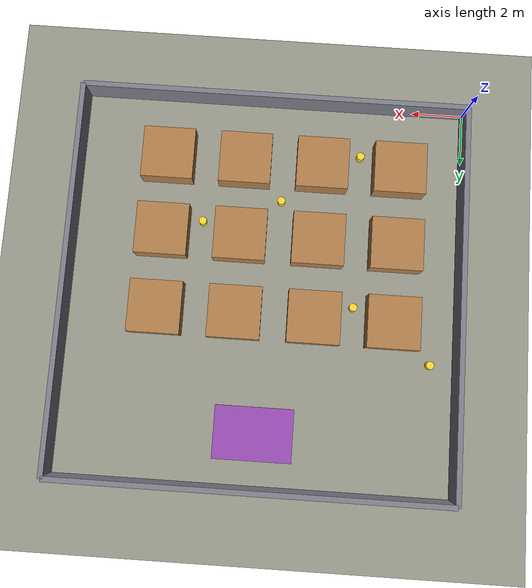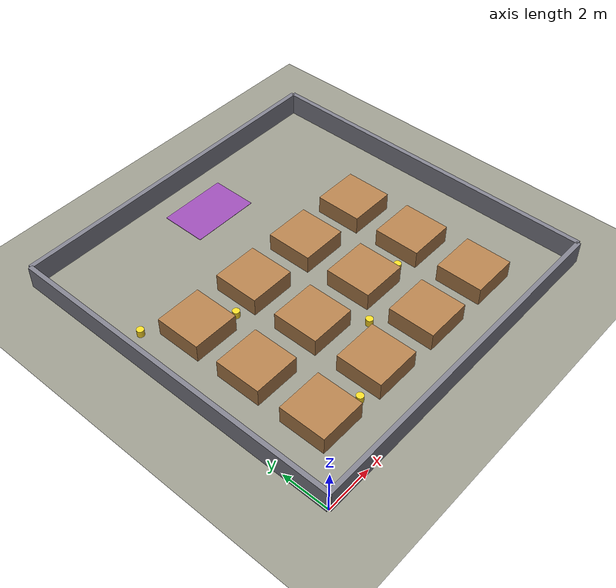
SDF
<?xml version="1.0" ?>
<sdf version="1.6">
  <world name="warehouse_world">

    <!-- Physics -->
    <physics type="ode">
      <max_step_size>0.001</max_step_size>
      <real_time_factor>1.0</real_time_factor>
      <real_time_update_rate>1000</real_time_update_rate>
    </physics>

    <!-- Lighting -->
    <light name="warehouse_light_1" type="directional">
      <pose>5 5 10 0 -0.5 0</pose>
      <diffuse>0.9 0.9 0.85 1</diffuse>
      <specular>0.2 0.2 0.2 1</specular>
      <direction>-0.3 0.3 -1.0</direction>
      <cast_shadows>true</cast_shadows>
    </light>

    <light name="warehouse_light_2" type="point">
      <pose>3 3 4 0 0 0</pose>
      <diffuse>0.6 0.6 0.55 1</diffuse>
      <attenuation>
        <range>20</range>
        <constant>0.3</constant>
        <linear>0.05</linear>
        <quadratic>0.01</quadratic>
      </attenuation>
    </light>

    <light name="warehouse_light_3" type="point">
      <pose>7 7 4 0 0 0</pose>
      <diffuse>0.6 0.6 0.55 1</diffuse>
      <attenuation>
        <range>20</range>
        <constant>0.3</constant>
        <linear>0.05</linear>
        <quadratic>0.01</quadratic>
      </attenuation>
    </light>

    <!-- Ground Plane (warehouse floor) -->
    <model name="ground_plane">
      <static>true</static>
      <link name="link">
        <collision name="collision">
          <geometry>
            <plane>
              <normal>0 0 1</normal>
              <size>15 15</size>
            </plane>
          </geometry>
          <surface>
            <friction>
              <ode>
                <mu>1.0</mu>
                <mu2>1.0</mu2>
              </ode>
            </friction>
          </surface>
        </collision>
        <visual name="visual">
          <geometry>
            <plane>
              <normal>0 0 1</normal>
              <size>15 15</size>
            </plane>
          </geometry>
          <material>
            <ambient>0.55 0.55 0.50 1</ambient>
            <diffuse>0.6 0.6 0.55 1</diffuse>
          </material>
        </visual>
      </link>
    </model>

    <!--  WAREHOUSE WALLS (outer boundary)                          -->

    <!-- Outer walls -->
    <model name="wall_north">
      <static>true</static>
      <pose>7.5 0 0.5 0 0 0</pose>
      <link name="link">
        <collision name="collision">
          <geometry><box><size>15 0.2 1.0</size></box></geometry>
        </collision>
        <visual name="visual">
          <geometry><box><size>15 0.2 1.0</size></box></geometry>
          <material>
            <ambient>0.4 0.4 0.45 1</ambient>
            <diffuse>0.5 0.5 0.55 1</diffuse>
          </material>
        </visual>
      </link>
    </model>

    <model name="wall_south">
      <static>true</static>
      <pose>7.5 15 0.5 0 0 0</pose>
      <link name="link">
        <collision name="collision">
          <geometry><box><size>15 0.2 1.0</size></box></geometry>
        </collision>
        <visual name="visual">
          <geometry><box><size>15 0.2 1.0</size></box></geometry>
          <material>
            <ambient>0.4 0.4 0.45 1</ambient>
            <diffuse>0.5 0.5 0.55 1</diffuse>
          </material>
        </visual>
      </link>
    </model>

    <model name="wall_west">
      <static>true</static>
      <pose>0 7.5 0.5 0 0 0</pose>
      <link name="link">
        <collision name="collision">
          <geometry><box><size>0.2 15 1.0</size></box></geometry>
        </collision>
        <visual name="visual">
          <geometry><box><size>0.2 15 1.0</size></box></geometry>
          <material>
            <ambient>0.4 0.4 0.45 1</ambient>
            <diffuse>0.5 0.5 0.55 1</diffuse>
          </material>
        </visual>
      </link>
    </model>

    <model name="wall_east">
      <static>true</static>
      <pose>15 7.5 0.5 0 0 0</pose>
      <link name="link">
        <collision name="collision">
          <geometry><box><size>0.2 15 1.0</size></box></geometry>
        </collision>
        <visual name="visual">
          <geometry><box><size>0.2 15 1.0</size></box></geometry>
          <material>
            <ambient>0.4 0.4 0.45 1</ambient>
            <diffuse>0.5 0.5 0.55 1</diffuse>
          </material>
        </visual>
      </link>
    </model>

    <!--  SHELVING UNITS (warehouse racks — creates aisles)         -->
    <!--  Matches grid layout: rows of 2x2 shelves with aisles     -->

    <!-- Row 1 shelves (grid rows 2-3) -->
    <model name="shelf_r1_a">
      <static>true</static>
      <pose>2.5 2.5 0.4 0 0 0</pose>
      <link name="link">
        <collision name="collision"><geometry><box><size>2.0 2.0 0.8</size></box></geometry></collision>
        <visual name="visual">
          <geometry><box><size>2.0 2.0 0.8</size></box></geometry>
          <material><ambient>0.6 0.45 0.25 1</ambient><diffuse>0.7 0.5 0.3 1</diffuse></material>
        </visual>
      </link>
    </model>

    <model name="shelf_r1_b">
      <static>true</static>
      <pose>5.5 2.5 0.4 0 0 0</pose>
      <link name="link">
        <collision name="collision"><geometry><box><size>2.0 2.0 0.8</size></box></geometry></collision>
        <visual name="visual">
          <geometry><box><size>2.0 2.0 0.8</size></box></geometry>
          <material><ambient>0.6 0.45 0.25 1</ambient><diffuse>0.7 0.5 0.3 1</diffuse></material>
        </visual>
      </link>
    </model>

    <model name="shelf_r1_c">
      <static>true</static>
      <pose>8.5 2.5 0.4 0 0 0</pose>
      <link name="link">
        <collision name="collision"><geometry><box><size>2.0 2.0 0.8</size></box></geometry></collision>
        <visual name="visual">
          <geometry><box><size>2.0 2.0 0.8</size></box></geometry>
          <material><ambient>0.6 0.45 0.25 1</ambient><diffuse>0.7 0.5 0.3 1</diffuse></material>
        </visual>
      </link>
    </model>

    <model name="shelf_r1_d">
      <static>true</static>
      <pose>11.5 2.5 0.4 0 0 0</pose>
      <link name="link">
        <collision name="collision"><geometry><box><size>2.0 2.0 0.8</size></box></geometry></collision>
        <visual name="visual">
          <geometry><box><size>2.0 2.0 0.8</size></box></geometry>
          <material><ambient>0.6 0.45 0.25 1</ambient><diffuse>0.7 0.5 0.3 1</diffuse></material>
        </visual>
      </link>
    </model>

    <!-- Row 2 shelves (grid rows 5-6) -->
    <model name="shelf_r2_a">
      <static>true</static>
      <pose>2.5 5.5 0.4 0 0 0</pose>
      <link name="link">
        <collision name="collision"><geometry><box><size>2.0 2.0 0.8</size></box></geometry></collision>
        <visual name="visual">
          <geometry><box><size>2.0 2.0 0.8</size></box></geometry>
          <material><ambient>0.6 0.45 0.25 1</ambient><diffuse>0.7 0.5 0.3 1</diffuse></material>
        </visual>
      </link>
    </model>

    <model name="shelf_r2_b">
      <static>true</static>
      <pose>5.5 5.5 0.4 0 0 0</pose>
      <link name="link">
        <collision name="collision"><geometry><box><size>2.0 2.0 0.8</size></box></geometry></collision>
        <visual name="visual">
          <geometry><box><size>2.0 2.0 0.8</size></box></geometry>
          <material><ambient>0.6 0.45 0.25 1</ambient><diffuse>0.7 0.5 0.3 1</diffuse></material>
        </visual>
      </link>
    </model>

    <model name="shelf_r2_c">
      <static>true</static>
      <pose>8.5 5.5 0.4 0 0 0</pose>
      <link name="link">
        <collision name="collision"><geometry><box><size>2.0 2.0 0.8</size></box></geometry></collision>
        <visual name="visual">
          <geometry><box><size>2.0 2.0 0.8</size></box></geometry>
          <material><ambient>0.6 0.45 0.25 1</ambient><diffuse>0.7 0.5 0.3 1</diffuse></material>
        </visual>
      </link>
    </model>

    <model name="shelf_r2_d">
      <static>true</static>
      <pose>11.5 5.5 0.4 0 0 0</pose>
      <link name="link">
        <collision name="collision"><geometry><box><size>2.0 2.0 0.8</size></box></geometry></collision>
        <visual name="visual">
          <geometry><box><size>2.0 2.0 0.8</size></box></geometry>
          <material><ambient>0.6 0.45 0.25 1</ambient><diffuse>0.7 0.5 0.3 1</diffuse></material>
        </visual>
      </link>
    </model>

    <!-- Row 3 shelves (grid rows 8-9) -->
    <model name="shelf_r3_a">
      <static>true</static>
      <pose>2.5 8.5 0.4 0 0 0</pose>
      <link name="link">
        <collision name="collision"><geometry><box><size>2.0 2.0 0.8</size></box></geometry></collision>
        <visual name="visual">
          <geometry><box><size>2.0 2.0 0.8</size></box></geometry>
          <material><ambient>0.6 0.45 0.25 1</ambient><diffuse>0.7 0.5 0.3 1</diffuse></material>
        </visual>
      </link>
    </model>

    <model name="shelf_r3_b">
      <static>true</static>
      <pose>5.5 8.5 0.4 0 0 0</pose>
      <link name="link">
        <collision name="collision"><geometry><box><size>2.0 2.0 0.8</size></box></geometry></collision>
        <visual name="visual">
          <geometry><box><size>2.0 2.0 0.8</size></box></geometry>
          <material><ambient>0.6 0.45 0.25 1</ambient><diffuse>0.7 0.5 0.3 1</diffuse></material>
        </visual>
      </link>
    </model>

    <model name="shelf_r3_c">
      <static>true</static>
      <pose>8.5 8.5 0.4 0 0 0</pose>
      <link name="link">
        <collision name="collision"><geometry><box><size>2.0 2.0 0.8</size></box></geometry></collision>
        <visual name="visual">
          <geometry><box><size>2.0 2.0 0.8</size></box></geometry>
          <material><ambient>0.6 0.45 0.25 1</ambient><diffuse>0.7 0.5 0.3 1</diffuse></material>
        </visual>
      </link>
    </model>

    <model name="shelf_r3_d">
      <static>true</static>
      <pose>11.5 8.5 0.4 0 0 0</pose>
      <link name="link">
        <collision name="collision"><geometry><box><size>2.0 2.0 0.8</size></box></geometry></collision>
        <visual name="visual">
          <geometry><box><size>2.0 2.0 0.8</size></box></geometry>
          <material><ambient>0.6 0.45 0.25 1</ambient><diffuse>0.7 0.5 0.3 1</diffuse></material>
        </visual>
      </link>
    </model>

    <!--  DROP ZONE (purple area — delivery target)                 -->
    <model name="drop_zone">
      <static>true</static>
      <pose>7.5 13 0.01 0 0 0</pose>
      <link name="link">
        <visual name="visual">
          <geometry><box><size>3.0 2.0 0.02</size></box></geometry>
          <material>
            <ambient>0.5 0.2 0.6 1</ambient>
            <diffuse>0.6 0.3 0.7 1</diffuse>
          </material>
        </visual>
      </link>
    </model>

    <!--  COLLECTIBLE OBJECTS (golden cylinders)                    -->

    <model name="object_0">
      <static>true</static>
      <pose>4 2 0.15 0 0 0</pose>
      <link name="link">
        <collision name="collision"><geometry><cylinder><radius>0.15</radius><length>0.3</length></cylinder></geometry></collision>
        <visual name="visual">
          <geometry><cylinder><radius>0.15</radius><length>0.3</length></cylinder></geometry>
          <material><ambient>0.9 0.75 0.1 1</ambient><diffuse>1.0 0.85 0.15 1</diffuse></material>
        </visual>
      </link>
    </model>

    <model name="object_1">
      <static>true</static>
      <pose>10 5 0.15 0 0 0</pose>
      <link name="link">
        <collision name="collision"><geometry><cylinder><radius>0.15</radius><length>0.3</length></cylinder></geometry></collision>
        <visual name="visual">
          <geometry><cylinder><radius>0.15</radius><length>0.3</length></cylinder></geometry>
          <material><ambient>0.9 0.75 0.1 1</ambient><diffuse>1.0 0.85 0.15 1</diffuse></material>
        </visual>
      </link>
    </model>

    <model name="object_2">
      <static>true</static>
      <pose>4 8 0.15 0 0 0</pose>
      <link name="link">
        <collision name="collision"><geometry><cylinder><radius>0.15</radius><length>0.3</length></cylinder></geometry></collision>
        <visual name="visual">
          <geometry><cylinder><radius>0.15</radius><length>0.3</length></cylinder></geometry>
          <material><ambient>0.9 0.75 0.1 1</ambient><diffuse>1.0 0.85 0.15 1</diffuse></material>
        </visual>
      </link>
    </model>

    <model name="object_3">
      <static>true</static>
      <pose>7 4 0.15 0 0 0</pose>
      <link name="link">
        <collision name="collision"><geometry><cylinder><radius>0.15</radius><length>0.3</length></cylinder></geometry></collision>
        <visual name="visual">
          <geometry><cylinder><radius>0.15</radius><length>0.3</length></cylinder></geometry>
          <material><ambient>0.9 0.75 0.1 1</ambient><diffuse>1.0 0.85 0.15 1</diffuse></material>
        </visual>
      </link>
    </model>

    <model name="object_4">
      <static>true</static>
      <pose>1 10 0.15 0 0 0</pose>
      <link name="link">
        <collision name="collision"><geometry><cylinder><radius>0.15</radius><length>0.3</length></cylinder></geometry></collision>
        <visual name="visual">
          <geometry><cylinder><radius>0.15</radius><length>0.3</length></cylinder></geometry>
          <material><ambient>0.9 0.75 0.1 1</ambient><diffuse>1.0 0.85 0.15 1</diffuse></material>
        </visual>
      </link>
    </model>

    <!-- Gazebo ROS plugins -->
    <plugin name="gazebo_ros_state" filename="libgazebo_ros_state.so">
      <ros>
        <namespace>/warehouse</namespace>
      </ros>
      <update_rate>50</update_rate>
    </plugin>

  </world>
</sdf>
